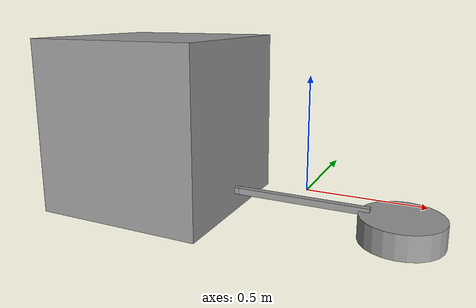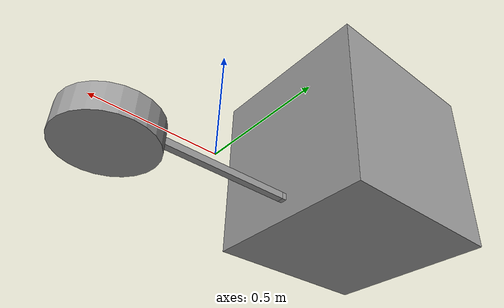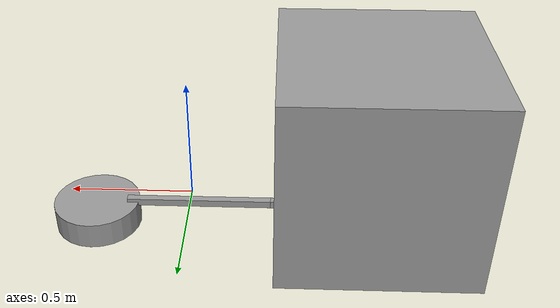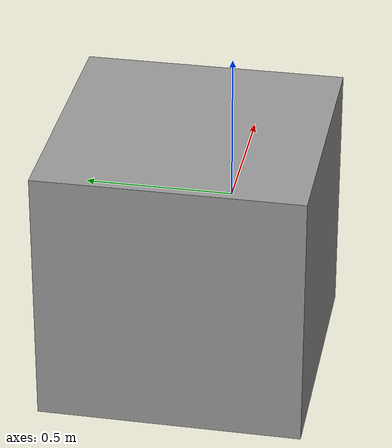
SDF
<?xml version='1.0'?>
<sdf version='1.6'>
  <model name='sajjad_test03'>
    <link name='link_1'>
      <pose frame=''>0.404609 0 -0.107562 0 -0 0</pose>
      <inertial>
        <mass>1</mass>
        <inertia>
          <ixx>0.145833</ixx>
          <ixy>0</ixy>
          <ixz>0</ixz>
          <iyy>0.145833</iyy>
          <iyz>0</iyz>
          <izz>0.125</izz>
        </inertia>
        <pose frame=''>0 0 0 0 -0 0</pose>
      </inertial>
      <gravity>1</gravity>
      <self_collide>0</self_collide>
      <kinematic>0</kinematic>
      <visual name='visual'>
        <pose frame=''>0 0 0 0 -0 0</pose>
        <geometry>
          <cylinder>
            <radius>0.178</radius>
            <length>0.10938</length>
          </cylinder>
        </geometry>
        <material>
          <lighting>1</lighting>
          <script>
            <uri>file://media/materials/scripts/gazebo.material</uri>
            <name>Gazebo/Grey</name>
          </script>
          <ambient>0.3 0.3 0.3 1</ambient>
          <diffuse>0.7 0.7 0.7 1</diffuse>
          <specular>0.01 0.01 0.01 1</specular>
          <emissive>0 0 0 1</emissive>
          <shader type='vertex'>
            <normal_map>__default__</normal_map>
          </shader>
        </material>
        <cast_shadows>1</cast_shadows>
        <transparency>0</transparency>
      </visual>
      <collision name='collision'>
        <laser_retro>0</laser_retro>
        <max_contacts>10</max_contacts>
        <pose frame=''>0 0 0 0 -0 0</pose>
        <geometry>
          <cylinder>
            <radius>0.178</radius>
            <length>0.10938</length>
          </cylinder>
        </geometry>
        <surface>
          <friction>
            <ode>
              <mu>1</mu>
              <mu2>1</mu2>
              <fdir1>0 0 0</fdir1>
              <slip1>0</slip1>
              <slip2>0</slip2>
            </ode>
            <torsional>
              <coefficient>1</coefficient>
              <patch_radius>0</patch_radius>
              <surface_radius>0</surface_radius>
              <use_patch_radius>1</use_patch_radius>
              <ode>
                <slip>0</slip>
              </ode>
            </torsional>
          </friction>
          <bounce>
            <restitution_coefficient>0</restitution_coefficient>
            <threshold>1e+06</threshold>
          </bounce>
          <contact>
            <collide_without_contact>0</collide_without_contact>
            <collide_without_contact_bitmask>1</collide_without_contact_bitmask>
            <collide_bitmask>1</collide_bitmask>
            <ode>
              <soft_cfm>0</soft_cfm>
              <soft_erp>0.2</soft_erp>
              <kp>1e+13</kp>
              <kd>1</kd>
              <max_vel>0.01</max_vel>
              <min_depth>0</min_depth>
            </ode>
            <bullet>
              <split_impulse>1</split_impulse>
              <split_impulse_penetration_threshold>-0.01</split_impulse_penetration_threshold>
              <soft_cfm>0</soft_cfm>
              <soft_erp>0.2</soft_erp>
              <kp>1e+13</kp>
              <kd>1</kd>
            </bullet>
          </contact>
        </surface>
      </collision>
    </link>
    <link name='link_2'>
      <pose frame=''>-0.025391 0 -0.052052 0 -0 0</pose>
      <inertial>
        <mass>1</mass>
        <inertia>
          <ixx>0.166667</ixx>
          <ixy>0</ixy>
          <ixz>0</ixz>
          <iyy>0.166667</iyy>
          <iyz>0</iyz>
          <izz>0.166667</izz>
        </inertia>
        <pose frame=''>0 0 0 0 -0 0</pose>
      </inertial>
      <gravity>1</gravity>
      <self_collide>0</self_collide>
      <kinematic>0</kinematic>
      <visual name='visual'>
        <pose frame=''>0 0 0 0 -0 0</pose>
        <geometry>
          <box>
            <size>0.6 0.03 0.03</size>
          </box>
        </geometry>
        <material>
          <lighting>1</lighting>
          <script>
            <uri>file://media/materials/scripts/gazebo.material</uri>
            <name>Gazebo/Grey</name>
          </script>
          <ambient>0.3 0.3 0.3 1</ambient>
          <diffuse>0.7 0.7 0.7 1</diffuse>
          <specular>0.01 0.01 0.01 1</specular>
          <emissive>0 0 0 1</emissive>
          <shader type='vertex'>
            <normal_map>__default__</normal_map>
          </shader>
        </material>
        <cast_shadows>1</cast_shadows>
        <transparency>0</transparency>
      </visual>
      <collision name='collision'>
        <laser_retro>0</laser_retro>
        <max_contacts>10</max_contacts>
        <pose frame=''>0 0 0 0 -0 0</pose>
        <geometry>
          <box>
            <size>0.6 0.03 0.03</size>
          </box>
        </geometry>
        <surface>
          <friction>
            <ode>
              <mu>1</mu>
              <mu2>1</mu2>
              <fdir1>0 0 0</fdir1>
              <slip1>0</slip1>
              <slip2>0</slip2>
            </ode>
            <torsional>
              <coefficient>1</coefficient>
              <patch_radius>0</patch_radius>
              <surface_radius>0</surface_radius>
              <use_patch_radius>1</use_patch_radius>
              <ode>
                <slip>0</slip>
              </ode>
            </torsional>
          </friction>
          <bounce>
            <restitution_coefficient>0</restitution_coefficient>
            <threshold>1e+06</threshold>
          </bounce>
          <contact>
            <collide_without_contact>0</collide_without_contact>
            <collide_without_contact_bitmask>1</collide_without_contact_bitmask>
            <collide_bitmask>1</collide_bitmask>
            <ode>
              <soft_cfm>0</soft_cfm>
              <soft_erp>0.2</soft_erp>
              <kp>1e+13</kp>
              <kd>1</kd>
              <max_vel>0.01</max_vel>
              <min_depth>0</min_depth>
            </ode>
            <bullet>
              <split_impulse>1</split_impulse>
              <split_impulse_penetration_threshold>-0.01</split_impulse_penetration_threshold>
              <soft_cfm>0</soft_cfm>
              <soft_erp>0.2</soft_erp>
              <kp>1e+13</kp>
              <kd>1</kd>
            </bullet>
          </contact>
        </surface>
      </collision>
    </link>
    <link name='link_6'>
      <pose frame=''>-0.33507 -0 -0.051877 0 -0 0</pose>
      <inertial>
        <mass>1</mass>
        <inertia>
          <ixx>0.166667</ixx>
          <ixy>0</ixy>
          <ixz>0</ixz>
          <iyy>0.166667</iyy>
          <iyz>0</iyz>
          <izz>0.166667</izz>
        </inertia>
        <pose frame=''>0 0 0 0 -0 0</pose>
      </inertial>
      <gravity>1</gravity>
      <self_collide>0</self_collide>
      <kinematic>0</kinematic>
      <visual name='visual'>
        <pose frame=''>0 0 0 0 -0 0</pose>
        <geometry>
          <box>
            <size>0.02 0.03 0.03</size>
          </box>
        </geometry>
        <material>
          <lighting>1</lighting>
          <script>
            <uri>file://media/materials/scripts/gazebo.material</uri>
            <name>Gazebo/Grey</name>
          </script>
          <ambient>0.3 0.3 0.3 1</ambient>
          <diffuse>0.7 0.7 0.7 1</diffuse>
          <specular>0.01 0.01 0.01 1</specular>
          <emissive>0 0 0 1</emissive>
          <shader type='vertex'>
            <normal_map>__default__</normal_map>
          </shader>
        </material>
        <cast_shadows>1</cast_shadows>
        <transparency>0</transparency>
      </visual>
      <collision name='collision'>
        <laser_retro>0</laser_retro>
        <max_contacts>10</max_contacts>
        <pose frame=''>0 0 0 0 -0 0</pose>
        <geometry>
          <box>
            <size>0.02 0.03 0.03</size>
          </box>
        </geometry>
        <surface>
          <friction>
            <ode>
              <mu>1</mu>
              <mu2>1</mu2>
              <fdir1>0 0 0</fdir1>
              <slip1>0</slip1>
              <slip2>0</slip2>
            </ode>
            <torsional>
              <coefficient>1</coefficient>
              <patch_radius>0</patch_radius>
              <surface_radius>0</surface_radius>
              <use_patch_radius>1</use_patch_radius>
              <ode>
                <slip>0</slip>
              </ode>
            </torsional>
          </friction>
          <bounce>
            <restitution_coefficient>0</restitution_coefficient>
            <threshold>1e+06</threshold>
          </bounce>
          <contact>
            <collide_without_contact>0</collide_without_contact>
            <collide_without_contact_bitmask>1</collide_without_contact_bitmask>
            <collide_bitmask>1</collide_bitmask>
            <ode>
              <soft_cfm>0</soft_cfm>
              <soft_erp>0.2</soft_erp>
              <kp>1e+13</kp>
              <kd>1</kd>
              <max_vel>0.01</max_vel>
              <min_depth>0</min_depth>
            </ode>
            <bullet>
              <split_impulse>1</split_impulse>
              <split_impulse_penetration_threshold>-0.01</split_impulse_penetration_threshold>
              <soft_cfm>0</soft_cfm>
              <soft_erp>0.2</soft_erp>
              <kp>1e+13</kp>
              <kd>1</kd>
            </bullet>
          </contact>
        </surface>
      </collision>
    </link>
    <link name='link_7'>
      <pose frame=''>-0.744328 0 0.248732 0 -0 0</pose>
      <inertial>
        <mass>1</mass>
        <inertia>
          <ixx>0.166667</ixx>
          <ixy>0</ixy>
          <ixz>0</ixz>
          <iyy>0.166667</iyy>
          <iyz>0</iyz>
          <izz>0.166667</izz>
        </inertia>
        <pose frame=''>0 0 0 0 -0 0</pose>
      </inertial>
      <gravity>1</gravity>
      <self_collide>0</self_collide>
      <kinematic>0</kinematic>
      <visual name='visual'>
        <pose frame=''>0 0 0 0 -0 0</pose>
        <geometry>
          <box>
            <size>0.8 0.8 0.8</size>
          </box>
        </geometry>
        <material>
          <lighting>1</lighting>
          <script>
            <uri>file://media/materials/scripts/gazebo.material</uri>
            <name>Gazebo/Grey</name>
          </script>
          <ambient>0.3 0.3 0.3 1</ambient>
          <diffuse>0.7 0.7 0.7 1</diffuse>
          <specular>0.01 0.01 0.01 1</specular>
          <emissive>0 0 0 1</emissive>
          <shader type='vertex'>
            <normal_map>__default__</normal_map>
          </shader>
        </material>
        <cast_shadows>1</cast_shadows>
        <transparency>0</transparency>
      </visual>
      <collision name='collision'>
        <laser_retro>0</laser_retro>
        <max_contacts>10</max_contacts>
        <pose frame=''>0 0 0 0 -0 0</pose>
        <geometry>
          <box>
            <size>0.8 0.8 0.8</size>
          </box>
        </geometry>
        <surface>
          <friction>
            <ode>
              <mu>1</mu>
              <mu2>1</mu2>
              <fdir1>0 0 0</fdir1>
              <slip1>0</slip1>
              <slip2>0</slip2>
            </ode>
            <torsional>
              <coefficient>1</coefficient>
              <patch_radius>0</patch_radius>
              <surface_radius>0</surface_radius>
              <use_patch_radius>1</use_patch_radius>
              <ode>
                <slip>0</slip>
              </ode>
            </torsional>
          </friction>
          <bounce>
            <restitution_coefficient>0</restitution_coefficient>
            <threshold>1e+06</threshold>
          </bounce>
          <contact>
            <collide_without_contact>0</collide_without_contact>
            <collide_without_contact_bitmask>1</collide_without_contact_bitmask>
            <collide_bitmask>1</collide_bitmask>
            <ode>
              <soft_cfm>0</soft_cfm>
              <soft_erp>0.2</soft_erp>
              <kp>1e+13</kp>
              <kd>1</kd>
              <max_vel>0.01</max_vel>
              <min_depth>0</min_depth>
            </ode>
            <bullet>
              <split_impulse>1</split_impulse>
              <split_impulse_penetration_threshold>-0.01</split_impulse_penetration_threshold>
              <soft_cfm>0</soft_cfm>
              <soft_erp>0.2</soft_erp>
              <kp>1e+13</kp>
              <kd>1</kd>
            </bullet>
          </contact>
        </surface>
      </collision>
    </link>
    <joint name='link_1_JOINT_0' type='fixed'>
      <parent>link_1</parent>
      <child>link_2</child>
      <pose frame=''>0 0 0 0 -0 0</pose>
      <physics>
        <ode>
          <limit>
            <cfm>0</cfm>
            <erp>0.2</erp>
          </limit>
          <suspension>
            <cfm>0</cfm>
            <erp>0.2</erp>
          </suspension>
        </ode>
      </physics>
    </joint>
    <joint name='link_2_JOINT_1' type='revolute'>
      <parent>link_2</parent>
      <child>link_6</child>
      <pose frame=''>0 0 0 0 -0 0</pose>
      <axis>
        <xyz>0 0 1</xyz>
        <use_parent_model_frame>0</use_parent_model_frame>
        <limit>
          <lower>-1.79769e+308</lower>
          <upper>1.79769e+308</upper>
          <effort>-1</effort>
          <velocity>-1</velocity>
        </limit>
        <dynamics>
          <spring_reference>0</spring_reference>
          <spring_stiffness>0</spring_stiffness>
          <damping>0</damping>
        </dynamics>
      </axis>
      <physics>
        <ode>
          <limit>
            <cfm>0</cfm>
            <erp>0.2</erp>
          </limit>
          <suspension>
            <cfm>0</cfm>
            <erp>0.2</erp>
          </suspension>
        </ode>
      </physics>
    </joint>
    <joint name='link_6_JOINT_2' type='fixed'>
      <parent>link_6</parent>
      <child>link_7</child>
      <pose frame=''>0 0 0 0 -0 0</pose>
      <physics>
        <ode>
          <limit>
            <cfm>0</cfm>
            <erp>0.2</erp>
          </limit>
          <suspension>
            <cfm>0</cfm>
            <erp>0.2</erp>
          </suspension>
        </ode>
      </physics>
    </joint>
    <static>0</static>
    <allow_auto_disable>1</allow_auto_disable>
  </model>
</sdf>
